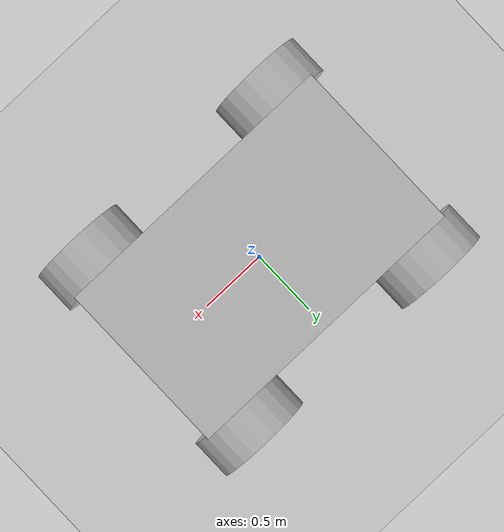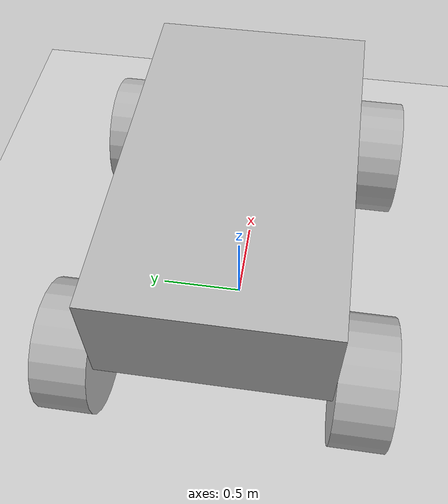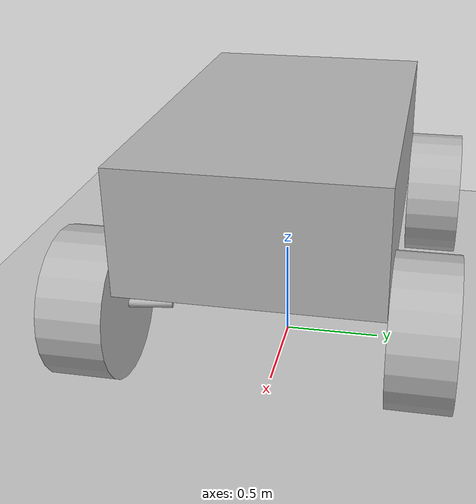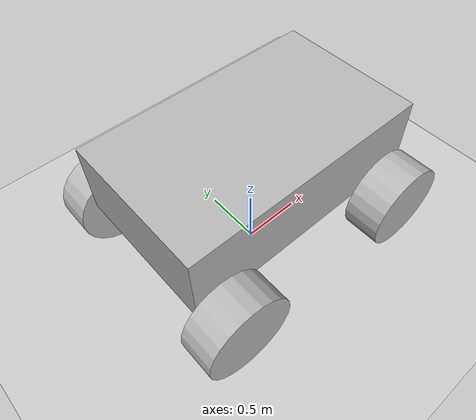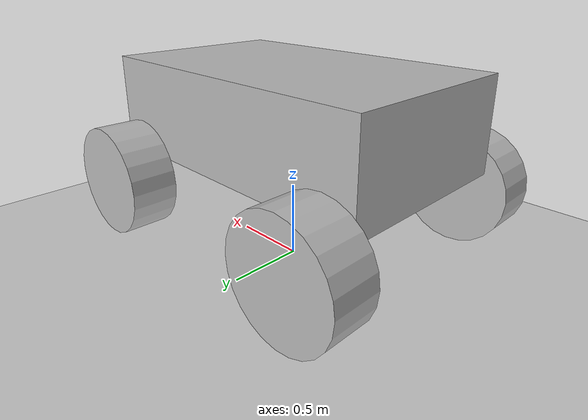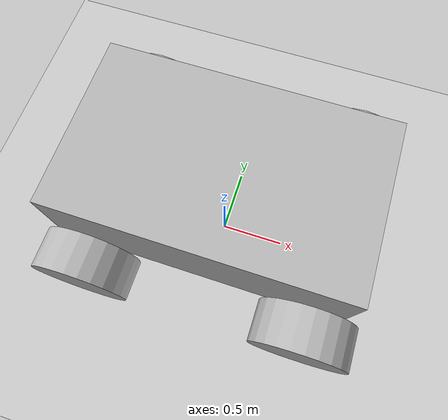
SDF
<sdf version="1.6">
  <world name="default">
    <include>
      <uri>model://ground_plane</uri>
    </include>
    <include>
      <uri>model://sun</uri>
    </include>
    <physics type="ode">
      <max_step_size>0.001</max_step_size>
      <ode>
        <solver>
          <friction_model>cone_model</friction_model>
        </solver>
      </ode>
    </physics>

    <model name="vehicle">
      <pose>0 0 0.5 0 0 0</pose>
      <link name="chassis">
        <pose>0 0 0.5 0 0 0.0</pose>
        <inertial>
          <mass>100.0</mass>
          <pose>-0.05 0 -0.1 0 0</pose>
          <inertia>
            <ixx>15.0</ixx>
            <iyy>36.33</iyy>
            <izz>45.33</izz>
            <ixy>0.0</ixy>
            <ixz>0.0</ixz>
            <iyz>0.0</iyz>
          </inertia>
        </inertial>
        <visual name="chassis_visual">
          <geometry>
            <box>
              <size>2.0 1.2 0.6</size>
            </box>
          </geometry>
        </visual>
        <collision name="chassis">
          <geometry>
            <box>
              <size>2.0 1.2 0.6</size>
            </box>
          </geometry>
        </collision>
      </link>
      <link name="front_right_wheel">
        <pose>0.8 -0.75 0.05 -1.5705 0 0</pose>
        <inertial>
          <mass>11</mass>
          <inertia>
            <ixx>0.413</ixx>
            <iyy>0.413</iyy>
            <izz>0.671</izz>
            <ixy>0.0</ixy>
            <ixz>0.0</ixz>
            <iyz>0.0</iyz>
          </inertia>
        </inertial>
        <visual name="visual">
          <geometry>
            <cylinder>
              <length>0.3</length>
              <radius>0.35</radius>
            </cylinder>
          </geometry>
        </visual>
        <collision name="collision">
          <geometry>
            <cylinder>
              <length>0.3</length>
              <radius>0.35</radius>
            </cylinder>
          </geometry>
          <surface>
            <friction>
              <ode>
                <mu>1.1</mu>
                <mu2>1.1</mu2>
              </ode>
            </friction>
            <contact>
              <ode>
                <min_depth>0.001</min_depth>
                <kp>1e9</kp>
              </ode>
            </contact>
          </surface>
        </collision>
      </link>
      <link name="front_right_axle">
        <pose>0.8 -0.65 0.05 0 0 0</pose>
        <inertial>
          <mass>2</mass>
          <inertia>
            <ixx>0.001666667</ixx>
            <ixy>0.0</ixy>
            <iyy>0.001666667</iyy>
            <ixz>0.0</ixz>
            <iyz>0.0</iyz>
            <izz>0.0025</izz>
          </inertia>
        </inertial>
        <visual name="visual">
          <geometry>
            <cylinder>
              <length>0.05</length>
              <radius>0.05</radius>
            </cylinder>
          </geometry>
        </visual>
        <collision name="collision">
          <geometry>
            <cylinder>
              <length>0.05</length>
              <radius>0.05</radius>
            </cylinder>
          </geometry>
        </collision>
      </link>

      <link name="front_steering_triangle">
        <pose>0.3 0 0.05 0 0 0</pose>
        <inertial>
          <mass>1</mass>
          <inertia>
            <ixx>0.01</ixx>
            <iyy>0.01</iyy>
            <izz>0.02</izz>
            <ixy>0.00</ixy>
            <ixz>0.00</ixz>
            <iyz>0.00</iyz>
          </inertia>
        </inertial>
        <visual name="visual">
          <geometry>
            <cylinder>
              <length>0.1</length>
              <radius>0.1</radius>
            </cylinder>
          </geometry>
        </visual>
        <collision name="collision">
          <geometry>
            <cylinder>
              <length>0.1</length>
              <radius>0.1</radius>
            </cylinder>
          </geometry>
        </collision>
      </link>

      <joint name="front_steering_motor" type="revolute">
        <parent>chassis</parent>
        <child>front_steering_triangle</child>
        <axis>
          <xyz>0 0 1</xyz>
          <limit>
            <lower>-1</lower>
            <upper>1</upper>
            <effort>2000</effort>
            <velocity>1.24</velocity>
          </limit>
          <dynamics>
            <damping>1</damping>
            <friction>0</friction>
          </dynamics>
        </axis>
        <physics>
          <ode>
            <cfm_damping>1</cfm_damping>
          </ode>
        </physics>
      </joint>

      <link name="front_right_steering_triangle">
        <pose>0.37 -0.07 0.05 0 0 0</pose>
        <inertial>
          <mass>1</mass>
          <inertia>
            <ixx>0.01</ixx>
            <iyy>0.01</iyy>
            <izz>0.02</izz>
            <ixy>0.00</ixy>
            <ixz>0.00</ixz>
            <iyz>0.00</iyz>
          </inertia>
        </inertial>
        <visual name="visual">
          <geometry>
            <sphere>
              <radius>0.05</radius>
            </sphere>
          </geometry>
        </visual>
        <collision name="collision">
          <geometry>
            <sphere>
              <radius>0.05</radius>
            </sphere>
          </geometry>
        </collision>
      </link>

      <link name="front_right_steering_rod">
        <pose>0.8 -0.65 0.05 0 1.57 -1.413</pose>
        <inertial>
          <mass>1</mass>
          <inertia>
            <ixx>0.02</ixx>
            <iyy>0.02</iyy>
            <izz>0.00</izz>
            <ixy>0.00</ixy>
            <ixz>0.00</ixz>
            <iyz>0.00</iyz>
          </inertia>
        </inertial>
        <visual name="visual">
          <geometry>
            <cylinder>
              <length>0.5</length>
              <radius>0.02</radius>
            </cylinder>
          </geometry>
        </visual>
        <collision name="collision">
          <geometry>
            <cylinder>
              <length>0.5</length>
              <radius>0.02</radius>
            </cylinder>
          </geometry>
        </collision>
      </link>

      <joint name="front_right_steering_connector" type="fixed">
        <parent>front_steering_triangle</parent>
        <child>front_right_steering_triangle</child>
      </joint>

      <joint name="front_right_steering_motor_rod_connector" type="revolute">
        <parent>front_right_steering_triangle</parent>
        <child>front_right_steering_rod</child>
        <pose>0 0 -0.5 0 0 0</pose>
        <axis>
          <xyz>0 0 1</xyz>
        </axis>
      </joint>

      <joint name="front_right_steering_rod_axle_connector" type="revolute">
        <parent>front_right_steering_rod</parent>
        <child>front_right_axle</child>
        <pose>-0.05 0.05 0 0 0 0</pose>
        <axis>
          <xyz>0 0 1</xyz>
        </axis>
      </joint>

      <joint name="front_right_kingpin" type="revolute">
        <parent>chassis</parent>
        <child>front_right_axle</child>
        <axis>
          <xyz>0 0 1</xyz>
          <limit>
            <lower>-0.62</lower>
            <upper>0.62</upper>
          </limit>
          <dynamics>
            <damping>1</damping>
            <friction>0</friction>
          </dynamics>
        </axis>
        <physics>
          <ode>
            <cfm_damping>1</cfm_damping>
          </ode>
        </physics>
      </joint>

      <joint name="front_right_wheel_motor" type="fixed">
        <parent>front_right_axle</parent>
        <child>front_right_wheel</child>
      </joint>

      <link name="front_left_wheel">
        <pose>0.8 0.75 0.05 -1.5705 0 0</pose>
        <inertial>
          <mass>11</mass>
          <inertia>
            <ixx>0.41300485416666666</ixx>
            <iyy>0.41300485416666666</iyy>
            <izz>0.6718263749999999</izz>
            <ixy>0.0</ixy>
            <ixz>0.0</ixz>
            <iyz>0.0</iyz>
          </inertia>
        </inertial>
        <visual name="visual">
          <geometry>
            <cylinder>
              <length>0.29</length>
              <radius>0.3495</radius>
            </cylinder>
          </geometry>
        </visual>
        <collision name="collision">
          <geometry>
            <cylinder>
              <length>0.29</length>
              <radius>0.3495</radius>
            </cylinder>
          </geometry>
          <surface>
            <friction>
              <ode>
                <mu>1.1</mu>
                <mu2>1.1</mu2>
              </ode>
            </friction>
            <contact>
              <ode>
                <min_depth>0.001</min_depth>
                <kp>1e9</kp>
              </ode>
            </contact>
          </surface>
        </collision>
      </link>

      <link name="rear_right_wheel">
        <pose>-0.8 -0.75 0.05 -1.5705 0 0</pose>
        <inertial>
          <mass>11</mass>
          <inertia>
            <ixx>0.41300485416666666</ixx>
            <iyy>0.41300485416666666</iyy>
            <izz>0.6718263749999999</izz>
            <ixy>0.0</ixy>
            <ixz>0.0</ixz>
            <iyz>0.0</iyz>
          </inertia>
        </inertial>
        <visual name="visual">
          <geometry>
            <cylinder>
              <length>0.29</length>
              <radius>0.3495</radius>
            </cylinder>
          </geometry>
        </visual>
        <collision name="collision">
          <geometry>
            <cylinder>
              <length>0.29</length>
              <radius>0.3495</radius>
            </cylinder>
          </geometry>
          <surface>
            <friction>
              <ode>
                <mu>1.1</mu>
                <mu2>1.1</mu2>
              </ode>
            </friction>
            <contact>
              <ode>
                <min_depth>0.001</min_depth>
                <kp>1e9</kp>
              </ode>
            </contact>
          </surface>
        </collision>
      </link>

      <link name="rear_left_wheel">
        <pose>-0.8 0.75 0.05 -1.5705 0 0</pose>
        <inertial>
          <mass>11</mass>
          <inertia>
            <ixx>0.41300485416666666</ixx>
            <iyy>0.41300485416666666</iyy>
            <izz>0.6718263749999999</izz>
            <ixy>0.0</ixy>
            <ixz>0.0</ixz>
            <iyz>0.0</iyz>
          </inertia>
        </inertial>
        <visual name="visual">
          <geometry>
            <cylinder>
              <length>0.29</length>
              <radius>0.3495</radius>
            </cylinder>
          </geometry>
        </visual>
        <collision name="collision">
          <geometry>
            <cylinder>
              <length>0.29</length>
              <radius>0.3495</radius>
            </cylinder>
          </geometry>
          <surface>
            <friction>
              <ode>
                <mu>1.1</mu>
                <mu2>1.1</mu2>
              </ode>
            </friction>
            <contact>
              <ode>
                <min_depth>0.001</min_depth>
                <kp>1e9</kp>
              </ode>
            </contact>
          </surface>
        </collision>
      </link>

      <joint name="front_left_motor" type="fixed">
        <parent>chassis</parent>
        <child>front_left_wheel</child>
      </joint>

      <joint name="rear_right_motor" type="fixed">
        <parent>chassis</parent>
        <child>rear_right_wheel</child>
      </joint>

      <joint name="rear_left_motor" type="fixed">
        <parent>chassis</parent>
        <child>rear_left_wheel</child>
      </joint>

      <plugin name="gazebo_ros_4ws" filename="libgazebo_ros_four_wheel_steering.so">
        <ros>
          <namespace>test</namespace>
        </ros>
        <front_right_wheel_pid_gain>400 0 1</front_right_wheel_pid_gain>
        <front_left_wheel_pid_gain>400 0 1</front_left_wheel_pid_gain>
        <rear_right_wheel_pid_gain>400 0 1</rear_right_wheel_pid_gain>
        <rear_left_wheel_pid_gain>400 0 1</rear_left_wheel_pid_gain>
        <front_steering_pid_gain>2000 0 2</front_steering_pid_gain>
        <rear_steering_pid_gain>2000 0 2</rear_steering_pid_gain>
      </plugin>
    </model>
  </world>
</sdf>
